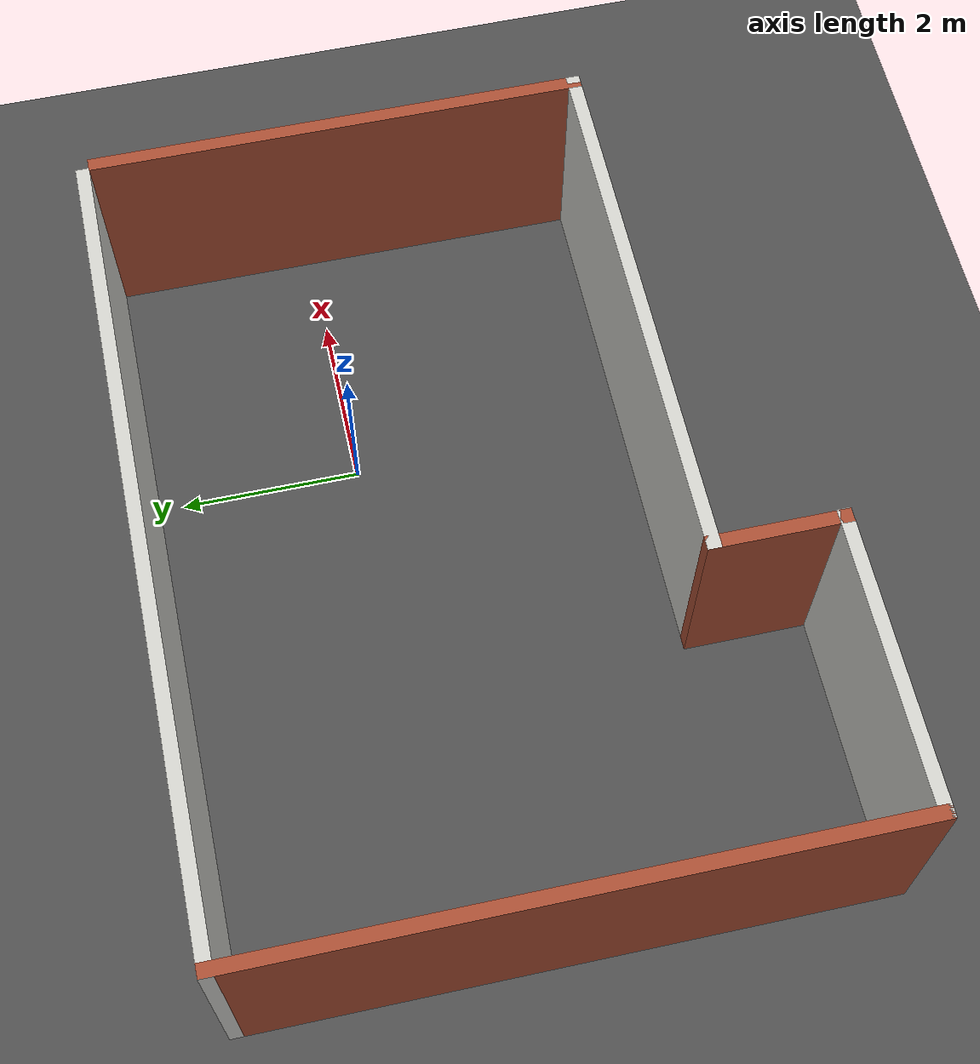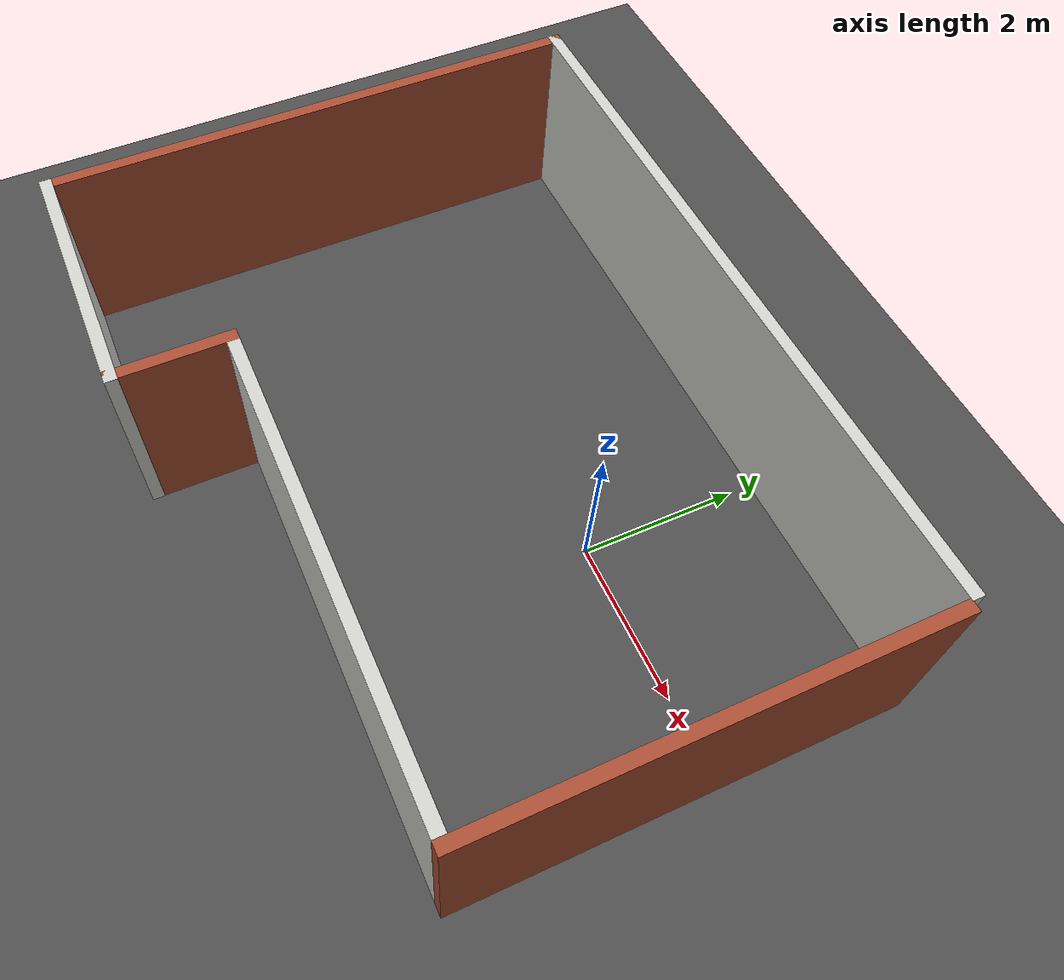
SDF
<sdf version="1.6">
 <world name="default">
  <light name="sun" type="directional">
   <pose>0 0 10 0 -0 0</pose>
   <diffuse>0.8 0.8 0.8 1</diffuse>
   <specular>0.2 0.2 0.2 1</specular>
   <attenuation>
    <range>1000</range>
    <constant>0.9</constant>
    <linear>0.01</linear>
    <quadratic>0.001</quadratic>
   </attenuation>
   <direction>-0.5 0.1 -0.9</direction>
  </light>
  <model name="ground_plane">
   <static>1</static>
   <link name="link">
    <collision name="collision">
     <geometry><plane><normal>0 0 1</normal><size>100 100</size></plane></geometry>
     <surface>
      <contact><collide_bitmask>65535</collide_bitmask></contact>
      <friction><ode><mu>100</mu><mu2>50</mu2></ode></friction>
     </surface>
    </collision>
    <visual name="visual">
     <cast_shadows>0</cast_shadows>
     <geometry><plane><normal>0 0 1</normal><size>100 100</size></plane></geometry>
     <material>
      <script><uri>file://media/materials/scripts/gazebo.material</uri><name>Gazebo/Grey</name></script>
     </material>
    </visual>
   </link>
  </model>
  <model name="asphalt_plane">
   <static>1</static>
   <link name="link">
    <collision name="collision"><geometry><box><size>200 200 0.1</size></box></geometry></collision>
    <visual name="visual">
     <cast_shadows>0</cast_shadows>
     <geometry><box><size>200 200 0.1</size></box></geometry>
     <material>
      <script>
       <uri>model://asphalt_plane/materials/scripts</uri>
       <uri>model://asphalt_plane/materials/textures</uri>
       <name>vrc/asphalt</name>
      </script>
     </material>
    </visual>
   </link>
  </model>
  <physics name="default_physics" default="0" type="ode">
   <ode>
    <solver>
     <type>quick</type>
     <iters>10</iters>
     <sor>1.3</sor>
     <use_dynamic_moi_rescaling>0</use_dynamic_moi_rescaling>
    </solver>
    <constraints>
     <cfm>0</cfm>
     <erp>0.2</erp>
     <contact_max_correcting_vel>100</contact_max_correcting_vel>
     <contact_surface_layer>0.001</contact_surface_layer>
    </constraints>
   </ode>
   <max_step_size>0.002</max_step_size>
   <real_time_factor>1</real_time_factor>
   <real_time_update_rate>500</real_time_update_rate>
  </physics>
  <gravity>0 0 -9.8066</gravity>
  <magnetic_field>6e-06 2.3e-05 -4.2e-05</magnetic_field>
  <atmosphere type="adiabatic"/>
  <scene><ambient>0.4 0.4 0.4 1</ambient><background>0.7 0.7 0.7 1</background><shadows>1</shadows></scene>
  <audio><device>default</device></audio>
  <spherical_coordinates>
   <surface_model>EARTH_WGS84</surface_model>
   <latitude_deg>0</latitude_deg>
   <longitude_deg>0</longitude_deg>
   <elevation>0</elevation>
   <heading_deg>0</heading_deg>
  </spherical_coordinates>
  <model name="Simple_World_1">
   <pose>-1.4637 -1.08164 0 0 -0 0</pose>
   <link name="Wall_10">
    <collision name="Wall_10_Collision">
     <geometry><box><size>7 0.15 2.5</size></box></geometry>
     <pose>0 0 1.25 0 -0 0</pose>
    </collision>
    <visual name="Wall_10_Visual">
     <pose>0 0 1.25 0 -0 0</pose>
     <geometry><box><size>7 0.15 2.5</size></box></geometry>
     <material>
      <script><uri>file://media/materials/scripts/gazebo.material</uri><name>Gazebo/Bricks</name></script>
      <ambient>1 1 1 1</ambient>
     </material>
     <meta><layer>0</layer></meta>
    </visual>
    <pose>-4.4837 6.4e-05 0 0 -0 -1.5708</pose>
   </link>
   <link name="Wall_11">
    <collision name="Wall_11_Collision">
     <geometry><box><size>3.26739 0.15 2.5</size></box></geometry>
     <pose>0 0 1.25 0 -0 0</pose>
    </collision>
    <visual name="Wall_11_Visual">
     <pose>0 0 1.25 0 -0 0</pose>
     <geometry><box><size>3.26739 0.15 2.5</size></box></geometry>
     <material>
      <script><uri>file://media/materials/scripts/gazebo.material</uri><name>Gazebo/CeilingTiled</name></script>
      <ambient>1 1 1 1</ambient>
     </material>
     <meta><layer>0</layer></meta>
    </visual>
    <pose>-2.91843 -3.42494 0 0 -0 0</pose>
   </link>
   <link name="Wall_15">
    <collision name="Wall_15_Collision">
     <geometry><box><size>1.50683 0.15 2.5</size></box></geometry>
     <pose>0 0 1.25 0 -0 0</pose>
    </collision>
    <visual name="Wall_15_Visual">
     <pose>0 0 1.25 0 -0 0</pose>
     <geometry><box><size>1.50683 0.15 2.5</size></box></geometry>
     <material>
      <script><uri>file://media/materials/scripts/gazebo.material</uri><name>Gazebo/Bricks</name></script>
      <ambient>1 1 1 1</ambient>
     </material>
     <meta><layer>0</layer></meta>
    </visual>
    <pose>-1.3663 -2.74665 0 0 -0 1.5708</pose>
   </link>
   <link name="Wall_19">
    <collision name="Wall_19_Collision">
     <geometry><box><size>9 0.15 2.5</size></box></geometry>
     <pose>0 0 1.25 0 -0 0</pose>
    </collision>
    <visual name="Wall_19_Visual">
     <pose>0 0 1.25 0 -0 0</pose>
     <geometry><box><size>9 0.15 2.5</size></box></geometry>
     <material>
      <script><uri>file://media/materials/scripts/gazebo.material</uri><name>Gazebo/CeilingTiled</name></script>
      <ambient>1 1 1 1</ambient>
     </material>
     <meta><layer>0</layer></meta>
    </visual>
    <pose>-0.058696 3.42506 0 0 -0 0</pose>
   </link>
   <link name="Wall_22">
    <collision name="Wall_22_Collision">
     <geometry><box><size>6 0.15 2.5</size></box></geometry>
     <pose>0 0 1.25 0 -0 0</pose>
    </collision>
    <visual name="Wall_22_Visual">
     <pose>0 0 1.25 0 -0 0</pose>
     <geometry><box><size>6 0.15 2.5</size></box></geometry>
     <material>
      <script><uri>file://media/materials/scripts/gazebo.material</uri><name>Gazebo/CeilingTiled</name></script>
      <ambient>1 1 1 1</ambient>
     </material>
     <meta><layer>0</layer></meta>
    </visual>
    <pose>1.5587 -2.06836 0 0 -0 0</pose>
   </link>
   <link name="Wall_23">
    <collision name="Wall_23_Collision">
     <geometry><box><size>5.5 0.15 2.5</size></box></geometry>
     <pose>0 0 1.25 0 -0 0</pose>
    </collision>
    <visual name="Wall_23_Visual">
     <pose>0 0 1.25 0 -0 0</pose>
     <geometry><box><size>5.5 0.15 2.5</size></box></geometry>
     <material>
      <script><uri>file://media/materials/scripts/gazebo.material</uri><name>Gazebo/Bricks</name></script>
      <ambient>1 1 1 1</ambient>
     </material>
     <meta><layer>0</layer></meta>
    </visual>
    <pose>4.4837 0.606639 0 0 -0 1.5708</pose>
   </link>
   <static>1</static>
  </model>
 </world>
</sdf>
